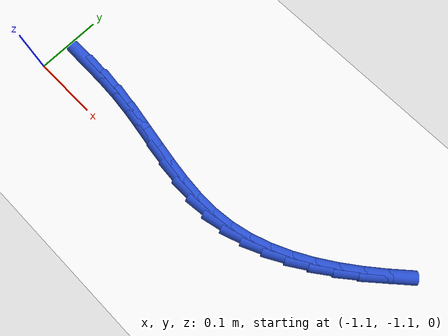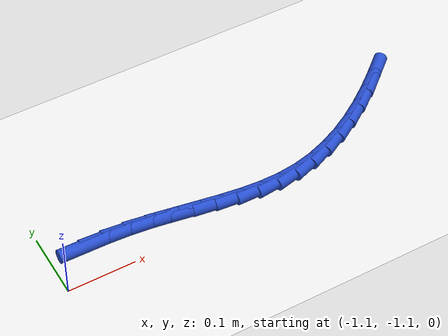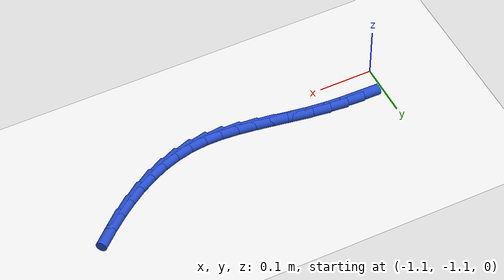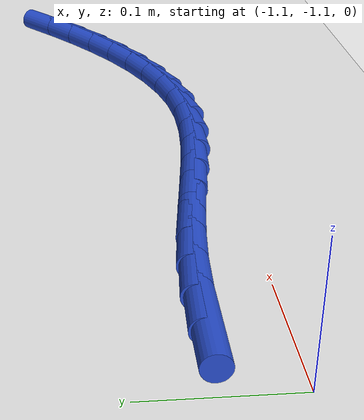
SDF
<sdf version="1.6">
 <world name="default">
  <model name="ground_plane">
   <static>1</static>
   <link name="link">
    <collision name="collision">
     <geometry><plane><normal>0 0 1</normal><size>100 100</size></plane></geometry>
     <surface><friction><ode><mu>100</mu><mu2>50</mu2></ode></friction></surface>
    </collision>
    <visual name="visual">
     <cast_shadows>0</cast_shadows>
     <geometry><plane><normal>0 0 1</normal><size>100 100</size></plane></geometry>
     <material>
      <script><uri>file://media/materials/scripts/gazebo.material</uri><name>Gazebo/WhiteGlow</name></script>
     </material>
    </visual>
   </link>
  </model>
  <model name="line">
   <link name="link_158">
    <pose>-1.0487359323585657 -1.049001831550234 0.01 0 1.57 -0.015808299167547932</pose>
    <collision name="collision">
     <geometry><cylinder><radius>0.01</radius><length>0.08</length></cylinder></geometry>
    </collision>
    <visual name="visual">
     <material>
      <script><name>Gazebo/Blue</name><uri>file://media/materials/scripts/gazebo.material</uri></script>
     </material>
     <geometry><cylinder><radius>0.01</radius><length>0.08</length></cylinder></geometry>
    </visual>
   </link>
   <link name="link_159">
    <pose>-1.0162258527730013 -1.0495158034292522 0.01 0 1.57 -0.05809908830767722</pose>
    <collision name="collision">
     <geometry><cylinder><radius>0.01</radius><length>0.08</length></cylinder></geometry>
    </collision>
    <visual name="visual">
     <material>
      <script><name>Gazebo/Blue</name><uri>file://media/materials/scripts/gazebo.material</uri></script>
     </material>
     <geometry><cylinder><radius>0.01</radius><length>0.08</length></cylinder></geometry>
    </visual>
   </link>
   <link name="link_160">
    <pose>-0.9836345521150448 -1.0514114616984398 0.01 0 1.57 -0.10959721122212703</pose>
    <collision name="collision">
     <geometry><cylinder><radius>0.01</radius><length>0.08</length></cylinder></geometry>
    </collision>
    <visual name="visual">
     <material>
      <script><name>Gazebo/Blue</name><uri>file://media/materials/scripts/gazebo.material</uri></script>
     </material>
     <geometry><cylinder><radius>0.01</radius><length>0.08</length></cylinder></geometry>
    </visual>
   </link>
   <link name="link_161">
    <pose>-0.9509624629644503 -1.0550066376377008 0.01 0 1.57 -0.1511697775780029</pose>
    <collision name="collision">
     <geometry><cylinder><radius>0.01</radius><length>0.08</length></cylinder></geometry>
    </collision>
    <visual name="visual">
     <material>
      <script><name>Gazebo/Blue</name><uri>file://media/materials/scripts/gazebo.material</uri></script>
     </material>
     <geometry><cylinder><radius>0.01</radius><length>0.08</length></cylinder></geometry>
    </visual>
   </link>
   <link name="link_162">
    <pose>-0.9182680971979376 -1.0599870333979704 0.01 0 1.57 -0.1694763383920444</pose>
    <collision name="collision">
     <geometry><cylinder><radius>0.01</radius><length>0.08</length></cylinder></geometry>
    </collision>
    <visual name="visual">
     <material>
      <script><name>Gazebo/Blue</name><uri>file://media/materials/scripts/gazebo.material</uri></script>
     </material>
     <geometry><cylinder><radius>0.01</radius><length>0.08</length></cylinder></geometry>
    </visual>
   </link>
   <link name="link_163">
    <pose>-0.8856531796569843 -1.0655680256407407 0.01 0 1.57 -0.16455819108111236</pose>
    <collision name="collision">
     <geometry><cylinder><radius>0.01</radius><length>0.08</length></cylinder></geometry>
    </collision>
    <visual name="visual">
     <material>
      <script><name>Gazebo/Blue</name><uri>file://media/materials/scripts/gazebo.material</uri></script>
     </material>
     <geometry><cylinder><radius>0.01</radius><length>0.08</length></cylinder></geometry>
    </visual>
   </link>
   <link name="link_164">
    <pose>-0.8532204636598223 -1.0709537971916758 0.01 0 1.57 -0.13586203653844636</pose>
    <collision name="collision">
     <geometry><cylinder><radius>0.01</radius><length>0.08</length></cylinder></geometry>
    </collision>
    <visual name="visual">
     <material>
      <script><name>Gazebo/Blue</name><uri>file://media/materials/scripts/gazebo.material</uri></script>
     </material>
     <geometry><cylinder><radius>0.01</radius><length>0.08</length></cylinder></geometry>
    </visual>
   </link>
   <link name="link_165">
    <pose>-0.8210727025246858 -1.0753485308764381 0.01 0 1.57 -0.08192811120968385</pose>
    <collision name="collision">
     <geometry><cylinder><radius>0.01</radius><length>0.08</length></cylinder></geometry>
    </collision>
    <visual name="visual">
     <material>
      <script><name>Gazebo/Blue</name><uri>file://media/materials/scripts/gazebo.material</uri></script>
     </material>
     <geometry><cylinder><radius>0.01</radius><length>0.08</length></cylinder></geometry>
    </visual>
   </link>
   <link name="link_166">
    <pose>-0.7893126495698062 -1.077956409520691 0.01 0 1.57 -0.0008061002006613796</pose>
    <collision name="collision">
     <geometry><cylinder><radius>0.01</radius><length>0.08</length></cylinder></geometry>
    </collision>
    <visual name="visual">
     <material>
      <script><name>Gazebo/Blue</name><uri>file://media/materials/scripts/gazebo.material</uri></script>
     </material>
     <geometry><cylinder><radius>0.01</radius><length>0.08</length></cylinder></geometry>
    </visual>
   </link>
   <link name="link_167">
    <pose>-0.7580430581134163 -1.0779816159500983 0.01 0 1.57 0.1081443492089898</pose>
    <collision name="collision">
     <geometry><cylinder><radius>0.01</radius><length>0.08</length></cylinder></geometry>
    </collision>
    <visual name="visual">
     <material>
      <script><name>Gazebo/Blue</name><uri>file://media/materials/scripts/gazebo.material</uri></script>
     </material>
     <geometry><cylinder><radius>0.01</radius><length>0.08</length></cylinder></geometry>
    </visual>
   </link>
   <link name="link_168">
    <pose>-0.7273644801097315 -1.074650906524316 0.01 0 1.57 0.22639410054080572</pose>
    <collision name="collision">
     <geometry><cylinder><radius>0.01</radius><length>0.08</length></cylinder></geometry>
    </collision>
    <visual name="visual">
     <material>
      <script><name>Gazebo/Blue</name><uri>file://media/materials/scripts/gazebo.material</uri></script>
     </material>
     <geometry><cylinder><radius>0.01</radius><length>0.08</length></cylinder></geometry>
    </visual>
   </link>
   <link name="link_169">
    <pose>-0.6973247647795594 -1.0677314693238948 0.01 0 1.57 0.3335227086435088</pose>
    <collision name="collision">
     <geometry><cylinder><radius>0.01</radius><length>0.08</length></cylinder></geometry>
    </collision>
    <visual name="visual">
     <material>
      <script><name>Gazebo/Blue</name><uri>file://media/materials/scripts/gazebo.material</uri></script>
     </material>
     <geometry><cylinder><radius>0.01</radius><length>0.08</length></cylinder></geometry>
    </visual>
   </link>
   <link name="link_170">
    <pose>-0.6679178815043116 -1.0575429945947066 0.01 0 1.57 0.42748726554606103</pose>
    <collision name="collision">
     <geometry><cylinder><radius>0.01</radius><length>0.08</length></cylinder></geometry>
    </collision>
    <visual name="visual">
     <material>
      <script><name>Gazebo/Blue</name><uri>file://media/materials/scripts/gazebo.material</uri></script>
     </material>
     <geometry><cylinder><radius>0.01</radius><length>0.08</length></cylinder></geometry>
    </visual>
   </link>
   <link name="link_171">
    <pose>-0.6391353628441766 -1.0444301605747555 0.01 0 1.57 0.5083020392374199</pose>
    <collision name="collision">
     <geometry><cylinder><radius>0.01</radius><length>0.08</length></cylinder></geometry>
    </collision>
    <visual name="visual">
     <material>
      <script><name>Gazebo/Blue</name><uri>file://media/materials/scripts/gazebo.material</uri></script>
     </material>
     <geometry><cylinder><radius>0.01</radius><length>0.08</length></cylinder></geometry>
    </visual>
   </link>
   <link name="link_172">
    <pose>-0.6109687413593415 -1.0287376455020452 0.01 0 1.57 0.576733356409816</pose>
    <collision name="collision">
     <geometry><cylinder><radius>0.01</radius><length>0.08</length></cylinder></geometry>
    </collision>
    <visual name="visual">
     <material>
      <script><name>Gazebo/Blue</name><uri>file://media/materials/scripts/gazebo.material</uri></script>
     </material>
     <geometry><cylinder><radius>0.01</radius><length>0.08</length></cylinder></geometry>
    </visual>
   </link>
   <link name="link_173">
    <pose>-0.5834095496099944 -1.0108101276145796 0.01 0 1.57 0.6338817286412978</pose>
    <collision name="collision">
     <geometry><cylinder><radius>0.01</radius><length>0.08</length></cylinder></geometry>
    </collision>
    <visual name="visual">
     <material>
      <script><name>Gazebo/Blue</name><uri>file://media/materials/scripts/gazebo.material</uri></script>
     </material>
     <geometry><cylinder><radius>0.01</radius><length>0.08</length></cylinder></geometry>
    </visual>
   </link>
   <link name="link_174">
    <pose>-0.5564493201563223 -0.990992285150362 0.01 0 1.57 0.6809005027724145</pose>
    <collision name="collision">
     <geometry><cylinder><radius>0.01</radius><length>0.08</length></cylinder></geometry>
    </collision>
    <visual name="visual">
     <material>
      <script><name>Gazebo/Blue</name><uri>file://media/materials/scripts/gazebo.material</uri></script>
     </material>
     <geometry><cylinder><radius>0.01</radius><length>0.08</length></cylinder></geometry>
    </visual>
   </link>
   <link name="link_175">
    <pose>-0.5300795855585134 -0.9696287963473967 0.01 0 1.57 0.7188346803189555</pose>
    <collision name="collision">
     <geometry><cylinder><radius>0.01</radius><length>0.08</length></cylinder></geometry>
    </collision>
    <visual name="visual">
     <material>
      <script><name>Gazebo/Blue</name><uri>file://media/materials/scripts/gazebo.material</uri></script>
     </material>
     <geometry><cylinder><radius>0.01</radius><length>0.08</length></cylinder></geometry>
    </visual>
   </link>
  </model>
 </world>
</sdf>
